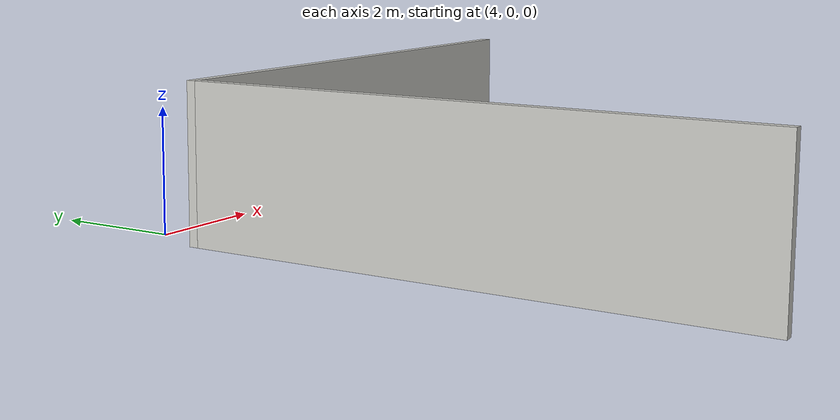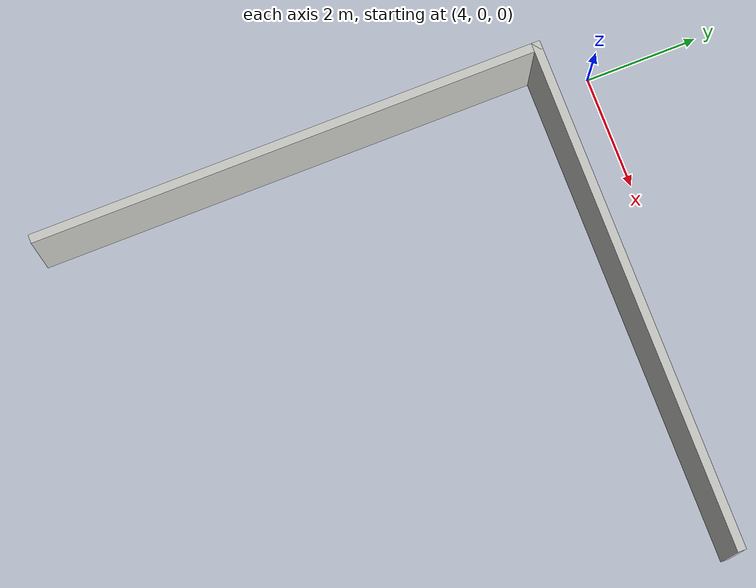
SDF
<?xml version='1.0'?>
<sdf version='1.7'>
  <model name='garage'>
    <pose>6.27854 -4.92924 0 0 -0 0</pose>
    <link name='Wall_15'>
      <collision name='Wall_15_Collision'>
        <geometry>
          <box>
            <size>9 0.15 2.5</size>
          </box>
        </geometry>
        <pose>0 0 1.25 0 -0 0</pose>
      </collision>
      <visual name='Wall_15_Visual'>
        <pose>0 0 1.25 0 -0 0</pose>
        <geometry>
          <box>
            <size>9 0.15 2.5</size>
          </box>
        </geometry>
        <material>
          <script>
            <uri>file://media/materials/scripts/gazebo.material</uri>
            <name>Gazebo/CeilingTiled</name>
          </script>
          <ambient>1 1 1 1</ambient>
        </material>
        <meta>
          <layer>0</layer>
        </meta>
      </visual>
      <pose>1.77854 3.99577 0 0 -0 0</pose>
    </link>
    <link name='Wall_17'>
      <collision name='Wall_17_Collision'>
        <geometry>
          <box>
            <size>9 0.15 2.5</size>
          </box>
        </geometry>
        <pose>0 0 1.25 0 -0 0</pose>
      </collision>
      <visual name='Wall_17_Visual'>
        <pose>0 0 1.25 0 -0 0</pose>
        <geometry>
          <box>
            <size>9 0.15 2.5</size>
          </box>
        </geometry>
        <material>
          <script>
            <uri>file://media/materials/scripts/gazebo.material</uri>
            <name>Gazebo/CeilingTiled</name>
          </script>
          <ambient>1 1 1 1</ambient>
        </material>
        <meta>
          <layer>0</layer>
        </meta>
      </visual>
      <pose>-2.64646 -0.429235 0 0 -0 -1.5708</pose>
    </link>
    <static>1</static>
  </model>
</sdf>
